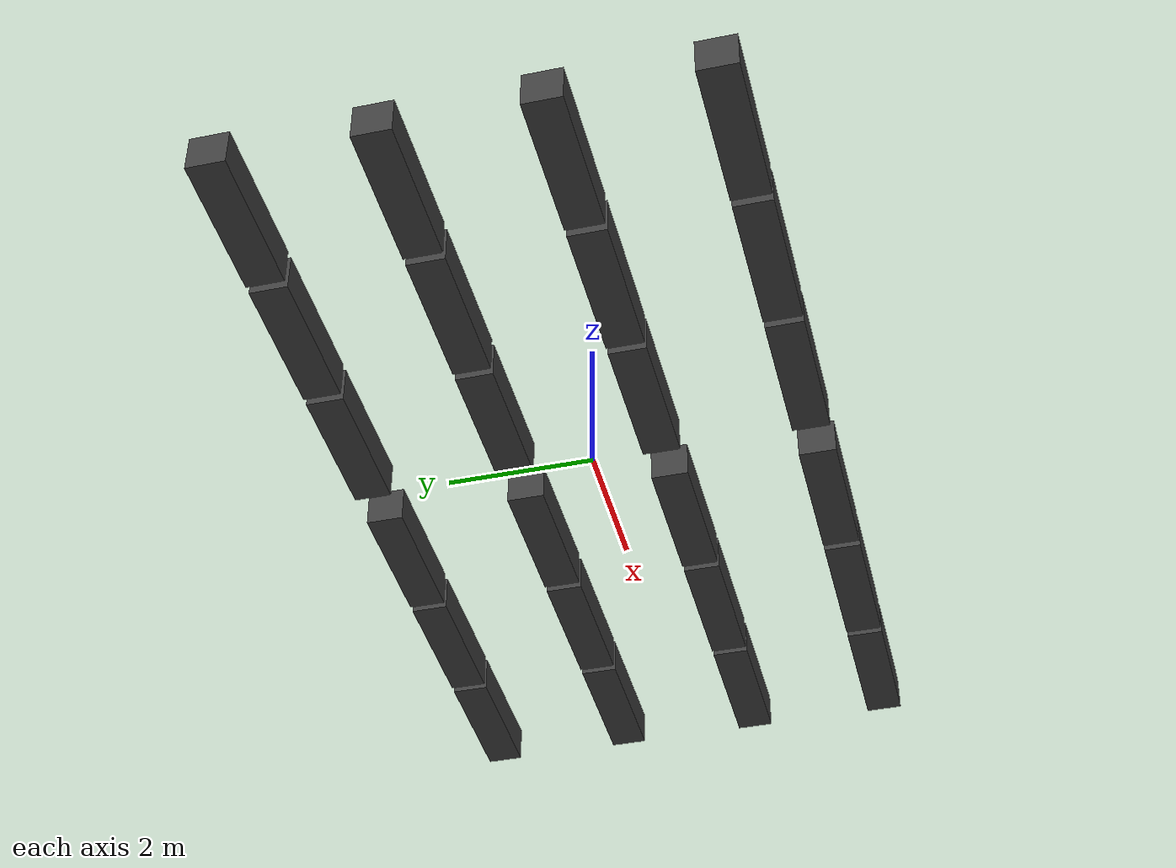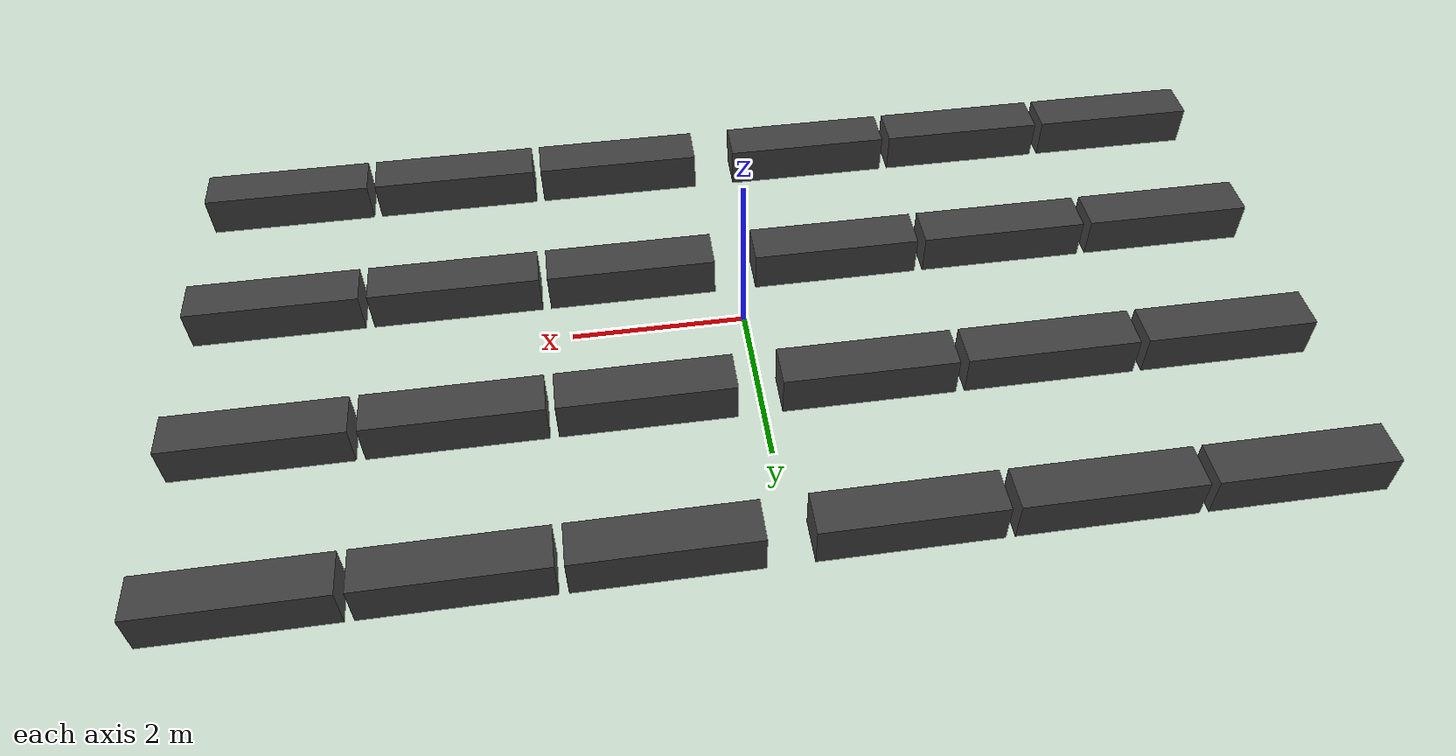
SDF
<!--
@file storage.sdf
@author Daniel Onderka (xonder05)
@date 03/2026
-->

<sdf version="1.9">
  <model name="shelves_grid">

    <model name="shelf11">
      <static>true</static>
      <pose>5.45 3 0 0 0 0</pose>
      <link name="link">
        <visual name="visual">
        <geometry><box><size>2 0.5 0.5</size></box></geometry>
        <material><diffuse>0.25 0.25 0.25 1</diffuse></material>
        </visual>
        <collision name="collision">
        <geometry><box><size>2 0.5 0.5</size></box></geometry>
        </collision>
      </link>
    </model>

    <model name="shelf12">
      <static>true</static>
      <pose>3.35 3 0 0 0 0</pose>
      <link name="link">
        <visual name="visual">
          <geometry><box><size>2 0.5 0.5</size></box></geometry>
          <material><diffuse>0.25 0.25 0.25 1</diffuse></material>
        </visual>
        <collision name="collision">
          <geometry><box><size>2 0.5 0.5</size></box></geometry>
        </collision>
      </link>
    </model>

    <model name="shelf13">
      <static>true</static>
      <pose>1.25 3 0 0 0 0</pose>
      <link name="link">
        <visual name="visual">
          <geometry><box><size>2 0.5 0.5</size></box></geometry>
          <material><diffuse>0.25 0.25 0.25 1</diffuse></material>
        </visual>
        <collision name="collision">
          <geometry><box><size>2 0.5 0.5</size></box></geometry>
        </collision>
      </link>
    </model>

    <model name="shelf14">
      <static>true</static>
      <pose>-1.25 3 0 0 0 0</pose>
      <link name="link">
        <visual name="visual">
          <geometry><box><size>2 0.5 0.5</size></box></geometry>
          <material><diffuse>0.25 0.25 0.25 1</diffuse></material>
        </visual>
        <collision name="collision">
          <geometry><box><size>2 0.5 0.5</size></box></geometry>
        </collision>
      </link>
    </model>

    <model name="shelf15">
      <static>true</static>
      <pose>-3.35 3 0 0 0 0</pose>
      <link name="link">
        <visual name="visual">
          <geometry><box><size>2 0.5 0.5</size></box></geometry>
          <material><diffuse>0.25 0.25 0.25 1</diffuse></material>
        </visual>
        <collision name="collision">
          <geometry><box><size>2 0.5 0.5</size></box></geometry>
        </collision>
      </link>
    </model>

    <model name="shelf16">
      <static>true</static>
      <pose>-5.45 3 0 0 0 0</pose>
      <link name="link">
        <visual name="visual">
          <geometry><box><size>2 0.5 0.5</size></box></geometry>
          <material><diffuse>0.25 0.25 0.25 1</diffuse></material>
        </visual>
        <collision name="collision">
          <geometry><box><size>2 0.5 0.5</size></box></geometry>
        </collision>
      </link>
    </model>

    <model name="shelf21">
      <static>true</static>
      <pose>5.45 1 0 0 0 0</pose>
      <link name="link">
        <visual name="visual">
          <geometry><box><size>2 0.5 0.5</size></box></geometry>
          <material><diffuse>0.25 0.25 0.25 1</diffuse></material>
        </visual>
        <collision name="collision">
          <geometry><box><size>2 0.5 0.5</size></box></geometry>
        </collision>
      </link>
    </model>

    <model name="shelf22">
      <static>true</static>
      <pose>3.35 1 0 0 0 0</pose>
      <link name="link">
        <visual name="visual">
          <geometry><box><size>2 0.5 0.5</size></box></geometry>
          <material><diffuse>0.25 0.25 0.25 1</diffuse></material>
        </visual>
        <collision name="collision">
          <geometry><box><size>2 0.5 0.5</size></box></geometry>
        </collision>
      </link>
    </model>

    <model name="shelf23">
      <static>true</static>
      <pose>1.25 1 0 0 0 0</pose>
      <link name="link">
        <visual name="visual">
          <geometry><box><size>2 0.5 0.5</size></box></geometry>
          <material><diffuse>0.25 0.25 0.25 1</diffuse></material>
        </visual>
        <collision name="collision">
          <geometry><box><size>2 0.5 0.5</size></box></geometry>
        </collision>
      </link>
    </model>

    <model name="shelf24">
      <static>true</static>
      <pose>-1.25 1 0 0 0 0</pose>
      <link name="link">
        <visual name="visual">
          <geometry><box><size>2 0.5 0.5</size></box></geometry>
          <material><diffuse>0.25 0.25 0.25 1</diffuse></material>
        </visual>
        <collision name="collision">
          <geometry><box><size>2 0.5 0.5</size></box></geometry>
        </collision>
      </link>
    </model>

    <model name="shelf25">
      <static>true</static>
      <pose>-3.35 1 0 0 0 0</pose>
      <link name="link">
        <visual name="visual">
          <geometry><box><size>2 0.5 0.5</size></box></geometry>
          <material><diffuse>0.25 0.25 0.25 1</diffuse></material>
        </visual>
        <collision name="collision">
          <geometry><box><size>2 0.5 0.5</size></box></geometry>
        </collision>
      </link>
    </model>

    <model name="shelf26">
      <static>true</static>
      <pose>-5.45 1 0 0 0 0</pose>
      <link name="link">
        <visual name="visual">
          <geometry><box><size>2 0.5 0.5</size></box></geometry>
          <material><diffuse>0.25 0.25 0.25 1</diffuse></material>
        </visual>
        <collision name="collision">
          <geometry><box><size>2 0.5 0.5</size></box></geometry>
        </collision>
      </link>
    </model>

    <model name="shelf31">
      <static>true</static>
      <pose>5.45 -1 0 0 0 0</pose>
      <link name="link">
        <visual name="visual">
          <geometry><box><size>2 0.5 0.5</size></box></geometry>
          <material><diffuse>0.25 0.25 0.25 1</diffuse></material>
        </visual>
        <collision name="collision">
          <geometry><box><size>2 0.5 0.5</size></box></geometry>
        </collision>
      </link>
    </model>

    <model name="shelf32">
      <static>true</static>
      <pose>3.35 -1 0 0 0 0</pose>
      <link name="link">
        <visual name="visual">
          <geometry><box><size>2 0.5 0.5</size></box></geometry>
          <material><diffuse>0.25 0.25 0.25 1</diffuse></material>
        </visual>
        <collision name="collision">
          <geometry><box><size>2 0.5 0.5</size></box></geometry>
        </collision>
      </link>
    </model>

    <model name="shelf33">
      <static>true</static>
      <pose>1.25 -1 0 0 0 0</pose>
      <link name="link">
        <visual name="visual">
          <geometry><box><size>2 0.5 0.5</size></box></geometry>
          <material><diffuse>0.25 0.25 0.25 1</diffuse></material>
        </visual>
        <collision name="collision">
          <geometry><box><size>2 0.5 0.5</size></box></geometry>
        </collision>
      </link>
    </model>

    <model name="shelf34">
      <static>true</static>
      <pose>-1.25 -1 0 0 0 0</pose>
      <link name="link">
        <visual name="visual">
          <geometry><box><size>2 0.5 0.5</size></box></geometry>
          <material><diffuse>0.25 0.25 0.25 1</diffuse></material>
        </visual>
        <collision name="collision">
          <geometry><box><size>2 0.5 0.5</size></box></geometry>
        </collision>
      </link>
    </model>

    <model name="shelf35">
      <static>true</static>
      <pose>-3.35 -1 0 0 0 0</pose>
      <link name="link">
        <visual name="visual">
          <geometry><box><size>2 0.5 0.5</size></box></geometry>
          <material><diffuse>0.25 0.25 0.25 1</diffuse></material>
        </visual>
        <collision name="collision">
          <geometry><box><size>2 0.5 0.5</size></box></geometry>
        </collision>
      </link>
    </model>

    <model name="shelf36">
      <static>true</static>
      <pose>-5.45 -1 0 0 0 0</pose>
      <link name="link">
        <visual name="visual">
          <geometry><box><size>2 0.5 0.5</size></box></geometry>
          <material><diffuse>0.25 0.25 0.25 1</diffuse></material>
        </visual>
        <collision name="collision">
          <geometry><box><size>2 0.5 0.5</size></box></geometry>
        </collision>
      </link>
    </model>

    <model name="shelf41">
      <static>true</static>
      <pose>5.45 -3 0 0 0 0</pose>
      <link name="link">
        <visual name="visual">
          <geometry><box><size>2 0.5 0.5</size></box></geometry>
          <material><diffuse>0.25 0.25 0.25 1</diffuse></material>
        </visual>
        <collision name="collision">
          <geometry><box><size>2 0.5 0.5</size></box></geometry>
        </collision>
      </link>
    </model>

    <model name="shelf42">
      <static>true</static>
      <pose>3.35 -3 0 0 0 0</pose>
      <link name="link">
        <visual name="visual">
          <geometry><box><size>2 0.5 0.5</size></box></geometry>
          <material><diffuse>0.25 0.25 0.25 1</diffuse></material>
        </visual>
        <collision name="collision">
          <geometry><box><size>2 0.5 0.5</size></box></geometry>
        </collision>
      </link>
    </model>

    <model name="shelf43">
      <static>true</static>
      <pose>1.25 -3 0 0 0 0</pose>
      <link name="link">
        <visual name="visual">
          <geometry><box><size>2 0.5 0.5</size></box></geometry>
          <material><diffuse>0.25 0.25 0.25 1</diffuse></material>
        </visual>
        <collision name="collision">
          <geometry><box><size>2 0.5 0.5</size></box></geometry>
        </collision>
      </link>
    </model>

    <model name="shelf44">
      <static>true</static>
      <pose>-1.25 -3 0 0 0 0</pose>
      <link name="link">
        <visual name="visual">
          <geometry><box><size>2 0.5 0.5</size></box></geometry>
          <material><diffuse>0.25 0.25 0.25 1</diffuse></material>
        </visual>
        <collision name="collision">
          <geometry><box><size>2 0.5 0.5</size></box></geometry>
        </collision>
      </link>
    </model>

    <model name="shelf45">
      <static>true</static>
      <pose>-3.35 -3 0 0 0 0</pose>
      <link name="link">
        <visual name="visual">
          <geometry><box><size>2 0.5 0.5</size></box></geometry>
          <material><diffuse>0.25 0.25 0.25 1</diffuse></material>
        </visual>
        <collision name="collision">
          <geometry><box><size>2 0.5 0.5</size></box></geometry>
        </collision>
      </link>
    </model>

    <model name="shelf46">
      <static>true</static>
      <pose>-5.45 -3 0 0 0 0</pose>
      <link name="link">
        <visual name="visual">
          <geometry><box><size>2 0.5 0.5</size></box></geometry>
          <material><diffuse>0.25 0.25 0.25 1</diffuse></material>
        </visual>
        <collision name="collision">
          <geometry><box><size>2 0.5 0.5</size></box></geometry>
        </collision>
      </link>
    </model>

  </model>
</sdf>
